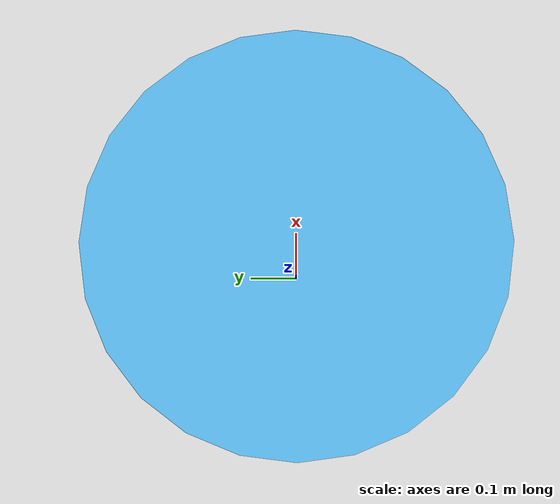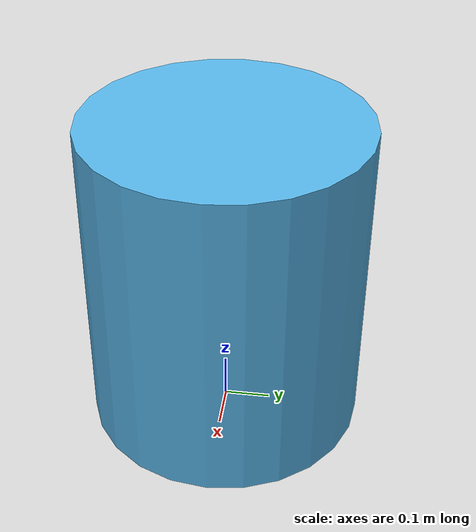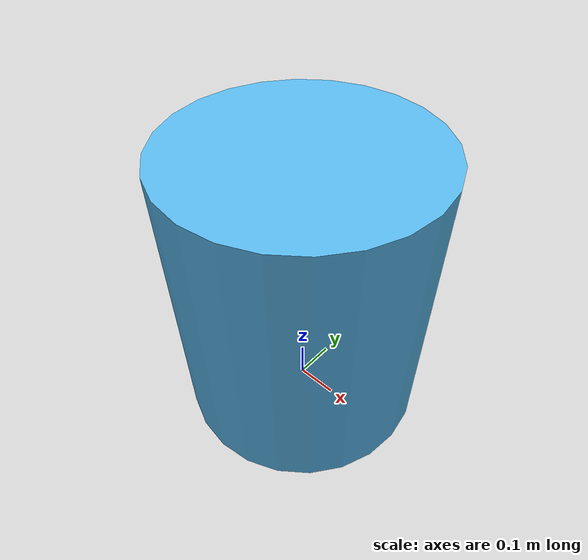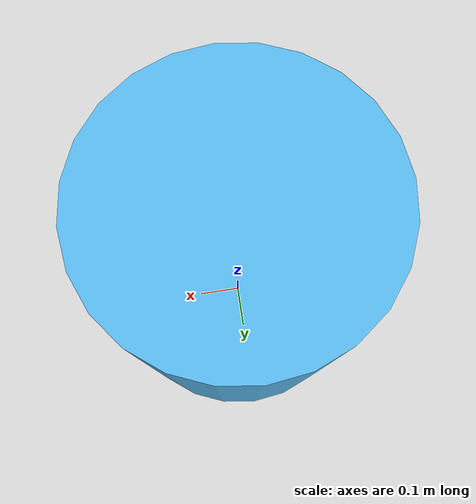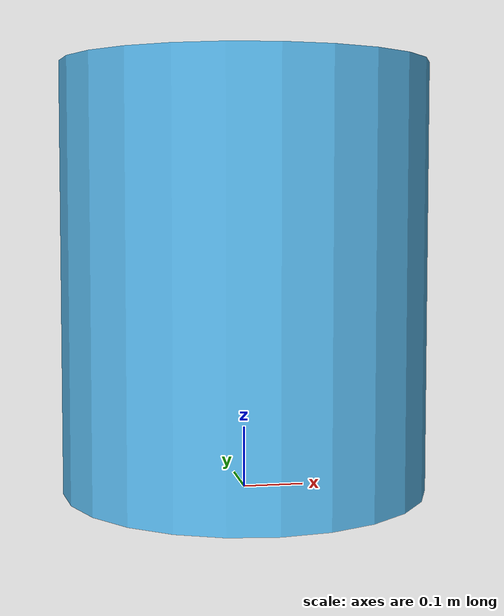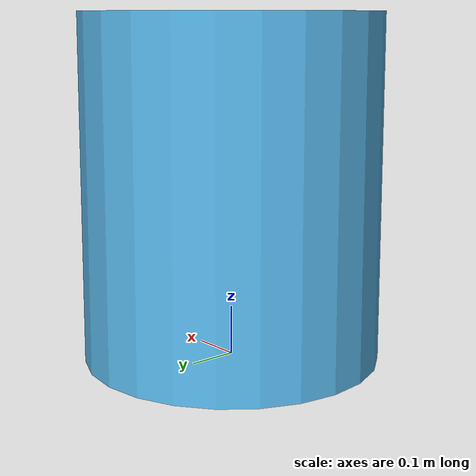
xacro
<?xml version="1.0"?>
<robot xmlns:xacro="http://wiki.ros.org/xacro">

  <xacro:macro name="table"/>

  <link name="world"/>

  <joint name="fixed" type="fixed">
    <parent link="world"/>
    <child link="table_link"/>
    <origin xyz="0.0 0.0 0.0" rpy="0.0 0.0 0.0" />
  </joint>

  <link name="table_link">

    <visual>
      <origin rpy="0.0 0 0" xyz="0 0 0.35"/>
      <geometry>
        <cylinder radius="0.3" length="0.7" />
      </geometry>
    </visual>

    <collision>
	    <origin rpy="0.0 0 0" xyz="0 0 0.35"/>
	    <geometry>
	      <cylinder radius="0.3" length="0.7" />
	    </geometry>
  	</collision>

    <inertial>
      <origin xyz="0 0 0.35" rpy="0 0 0"/>
      <mass value="20"/>
      <inertia
        ixx="1.0" ixy="0.0" ixz="0.0"
        iyy="1.0" iyz="0.0"
        izz="1.0"/>
    </inertial>
  </link>

</robot>
